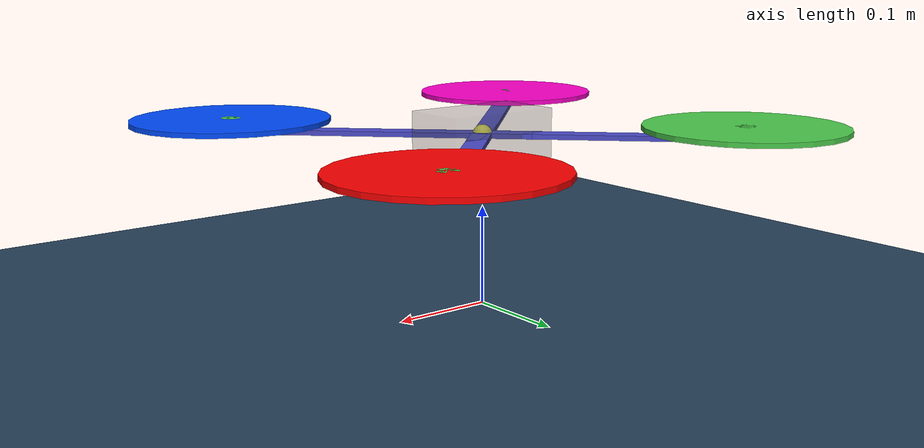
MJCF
<?xml version='1.0' encoding='utf-8'?>
<mujoco model="Delta">

  <compiler angle="radian" meshdir="assets" />
  <option timestep="0.0001" gravity="0 0 -9.81" integrator="implicit" iterations="100" density="1" viscosity="1e-5" />

  <default>
    <joint type="hinge" frictionloss="0.0001" damping="0.00005" limited="true" range="-3.14 3.14" />
    <position ctrllimited="false" forcelimited="false" kp="100" kv="10" />
  </default>

  <asset>
    <texture name="grid" type="2d" builtin="checker" rgb1=".1 .2 .3" rgb2=".2 .3 .4" width="100" height="100" />
    <material name="grid" texture="grid" texrepeat="5 5" reflectance="0.0" />
  </asset>

  <worldbody>

    <geom pos="0 0 0" size="0 0 0.05" type="plane" material="grid" />

    <light pos="0 0 10." />

    <body name="UAV_Delta_platform" pos="0 0 0.13271" quat="1. 0. 0. 0">
      <freejoint />
      <body name="UAV_body" pos="0 0 0.04" quat="1. 0. 0. 0">
        <site name="imu" />
        <site name="UAV_center" pos=" 0 0 0" size="0.01" quat="1.0 0.0 0.0 0." rgba="0.8 0.8 0.3 1" />
        <geom name="core" type="box" pos="0 0 0" quat="1. 0. 0. 0" size="0.06 0.035 0.025" rgba="0.3 0.3 0.3 0.3" mass=".2" />
        <geom name="a00" type="box" pos=".071 0.071 0" size="0.15 0.01 0.0025" quat=".924 0.0 0.0 0.383" rgba="0.3 0.3 0.8 1" mass=".025" />
        <geom name="a10" type="box" pos=".071 -0.071 0" size="0.15 0.01 0.0025" quat=".383 0.0 0.0 0.924" rgba="0.3 0.3 0.8 1" mass=".025" />
        <geom name="a20" type="box" pos="-0.071 -0.071 0" size="0.15 0.01 0.0025" quat="-.383 0.0 0.0 0.924" rgba="0.3 0.3 0.8 1" mass=".025" />
        <geom name="a30" type="box" pos="-.071 0.071 0" size="0.15 0.01 0.0025" quat=".924 0.0 0.0 -0.383" rgba="0.3 0.3 0.8 1" mass=".025" />

        <site name="motor1" type="cylinder" pos=" 0.18  0.18 0.01" size="0.01 0.0025" quat="1.0 0.0 0.0 0." rgba="0.3 0.8 0.3 1" />
        <site name="motor2" type="cylinder" pos=" 0.18 -0.18 0.01" size="0.01 0.0025" quat="1.0 0.0 0.0 0." rgba="0.3 0.8 0.3 1" />
        <site name="motor3" type="cylinder" pos="-0.18 -0.18 0.01" size="0.01 0.0025" quat="1.0 0.0 0.0 0." rgba="0.3 0.8 0.3 1" />
        <site name="motor4" type="cylinder" pos="-0.18  0.18 0.01" size="0.01 0.0025" quat="1.0 0.0 0.0 0." rgba="0.3 0.8 0.3 1" />

        <geom name="prop1" type="cylinder" pos=" 0.18  0.18  0.01" size="0.1 0.0025" quat="1.0 0.0 0.0 0." rgba="1 0 0 1" mass=".025" />
        <geom name="prop2" type="cylinder" pos=" 0.18  -0.18  0.01" size="0.1 0.0025" quat="1.0 0.0 0.0 0." rgba="0 0.3 1 1" mass=".025" />
        <geom name="prop3" type="cylinder" pos=" -0.18  -0.18  0.01" size="0.1 0.0025" quat="1.0 0.0 0.0 0." rgba="1 0 0.8 1" mass=".025" />
        <geom name="prop4" type="cylinder" pos=" -0.18  0.18  0.01" size="0.1 0.0025" quat="1.0 0.0 0.0 0." rgba="0.3 0.8 0.3 1" mass=".025" />
      </body>
      <camera name="track" pos="0 -1. .3" xyaxes="1 0 0 0 1 2" mode="track" />
      </body>

    </worldbody>

  <actuator>

    <!-- Disable direct force/torque actuation -->

    <!--
      gear="0 0 Ct 0 0 Cm"
      From config.py: Ct = 0.01343, Cm = 0.0003099 (rounded to 0.00031)
      Rotor 0, 2: CCW -> -Cm
      Rotor 1, 3: CW  -> +Cm
    -->
    <motor name="rotor0" gear="0 0 0.01343 0. 0. -0.00031" site="motor1" />
    <motor name="rotor1" gear="0 0 0.01343 0. 0.  0.00031" site="motor2" />
    <motor name="rotor2" gear="0 0 0.01343 0. 0. -0.00031" site="motor3" />
    <motor name="rotor3" gear="0 0 0.01343 0. 0.  0.00031" site="motor4" />

    </actuator>

  <sensor>
    <gyro name="body_gyro" site="imu" />
    <accelerometer name="body_linacc" site="imu" />
    <framequat name="body_quat" objtype="site" objname="imu" />

    </sensor>

  <visual>
    <global offwidth="1920" offheight="1680" />
  </visual>

</mujoco>
